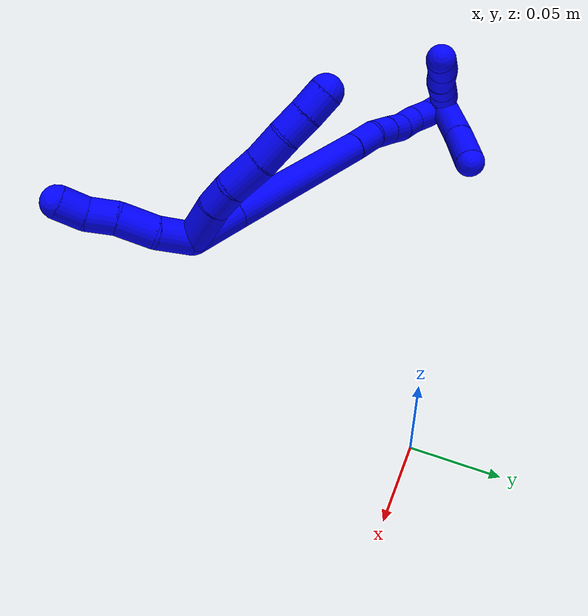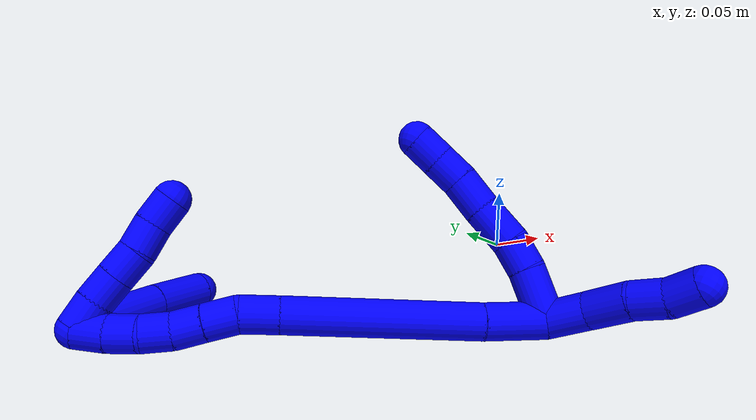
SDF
<sdf version="1.7">
 <world name="default">
  <model name="1">
   <static>0</static>
   <link name="1">
    <collision name="collision-cylinder-e_1_2_8">
     <pose>-0.00369 0.013308 -0.010837 -2.25419 -0.211809 0.440057</pose>
     <geometry><cylinder><radius>0.0125</radius><length>0.035109</length></cylinder></geometry>
     <surface>
      <friction><ode><mu>1.16</mu><mu2>1.16</mu2><slip1>0</slip1><slip2>0</slip2></ode></friction>
      <contact><ode><kp>1e+06</kp><kd>1</kd><max_vel>0</max_vel><min_depth>0.001</min_depth></ode></contact>
     </surface>
    </collision>
    <visual name="visual-cylinder-e_1_2_8">
     <pose>-0.00369 0.013308 -0.010837 -2.25419 -0.211809 0.440057</pose>
     <geometry><cylinder><radius>0.0125</radius><length>0.035109</length></cylinder></geometry>
     <material><ambient>0 0 1 1</ambient></material>
    </visual>
    <collision name="collision-cylinder-e_2_8_9">
     <pose>-0.010771 0.034968 -0.027035 -2.14153 -0.329173 0.590249</pose>
     <geometry><cylinder><radius>0.0125</radius><length>0.020975</length></cylinder></geometry>
     <surface>
      <friction><ode><mu>1.16</mu><mu2>1.16</mu2><slip1>0</slip1><slip2>0</slip2></ode></friction>
      <contact><ode><kp>1e+06</kp><kd>1</kd><max_vel>0</max_vel><min_depth>0.001</min_depth></ode></contact>
     </surface>
    </collision>
    <visual name="visual-cylinder-e_2_8_9">
     <pose>-0.010771 0.034968 -0.027035 -2.14153 -0.329173 0.590249</pose>
     <geometry><cylinder><radius>0.0125</radius><length>0.020975</length></cylinder></geometry>
     <material><ambient>0 0 1 1</ambient></material>
    </visual>
    <collision name="collision-cylinder-e_3_9_10">
     <pose>-0.019874 0.055697 -0.037319 -1.94926 -0.405152 0.587874</pose>
     <geometry><cylinder><radius>0.0125</radius><length>0.028986</length></cylinder></geometry>
     <surface>
      <friction><ode><mu>1.16</mu><mu2>1.16</mu2><slip1>0</slip1><slip2>0</slip2></ode></friction>
      <contact><ode><kp>1e+06</kp><kd>1</kd><max_vel>0</max_vel><min_depth>0.001</min_depth></ode></contact>
     </surface>
    </collision>
    <visual name="visual-cylinder-e_3_9_10">
     <pose>-0.019874 0.055697 -0.037319 -1.94926 -0.405152 0.587874</pose>
     <geometry><cylinder><radius>0.0125</radius><length>0.028986</length></cylinder></geometry>
     <material><ambient>0 0 1 1</ambient></material>
    </visual>
    <collision name="collision-cylinder-e_4_10_11">
     <pose>-0.029248 0.079048 -0.046589 -1.94814 -0.300772 0.438922</pose>
     <geometry><cylinder><radius>0.0125</radius><length>0.024719</length></cylinder></geometry>
     <surface>
      <friction><ode><mu>1.16</mu><mu2>1.16</mu2><slip1>0</slip1><slip2>0</slip2></ode></friction>
      <contact><ode><kp>1e+06</kp><kd>1</kd><max_vel>0</max_vel><min_depth>0.001</min_depth></ode></contact>
     </surface>
    </collision>
    <visual name="visual-cylinder-e_4_10_11">
     <pose>-0.029248 0.079048 -0.046589 -1.94814 -0.300772 0.438922</pose>
     <geometry><cylinder><radius>0.0125</radius><length>0.024719</length></cylinder></geometry>
     <material><ambient>0 0 1 1</ambient></material>
    </visual>
    <collision name="collision-cylinder-e_5_11_12">
     <pose>-0.035914 0.099392 -0.052964 -1.78369 -0.30371 0.374846</pose>
     <geometry><cylinder><radius>0.0125</radius><length>0.020093</length></cylinder></geometry>
     <surface>
      <friction><ode><mu>1.16</mu><mu2>1.16</mu2><slip1>0</slip1><slip2>0</slip2></ode></friction>
      <contact><ode><kp>1e+06</kp><kd>1</kd><max_vel>0</max_vel><min_depth>0.001</min_depth></ode></contact>
     </surface>
    </collision>
    <visual name="visual-cylinder-e_5_11_12">
     <pose>-0.035914 0.099392 -0.052964 -1.78369 -0.30371 0.374846</pose>
     <geometry><cylinder><radius>0.0125</radius><length>0.020093</length></cylinder></geometry>
     <material><ambient>0 0 1 1</ambient></material>
    </visual>
    <collision name="collision-cylinder-e_6_12_6">
     <pose>-0.041381 0.118352 -0.056765 -1.75386 -0.247348 0.296675</pose>
     <geometry><cylinder><radius>0.0125</radius><length>0.020118</length></cylinder></geometry>
     <surface>
      <friction><ode><mu>1.16</mu><mu2>1.16</mu2><slip1>0</slip1><slip2>0</slip2></ode></friction>
      <contact><ode><kp>1e+06</kp><kd>1</kd><max_vel>0</max_vel><min_depth>0.001</min_depth></ode></contact>
     </surface>
    </collision>
    <visual name="visual-cylinder-e_6_12_6">
     <pose>-0.041381 0.118352 -0.056765 -1.75386 -0.247348 0.296675</pose>
     <geometry><cylinder><radius>0.0125</radius><length>0.020118</length></cylinder></geometry>
     <material><ambient>0 0 1 1</ambient></material>
    </visual>
    <collision name="collision-cylinder-e_1_2_13">
     <pose>0.010882 -0.004922 -0.007622 2.56821 0.875781 2.01769</pose>
     <geometry><cylinder><radius>0.0125</radius><length>0.028337</length></cylinder></geometry>
     <surface>
      <friction><ode><mu>1.16</mu><mu2>1.16</mu2><slip1>0</slip1><slip2>0</slip2></ode></friction>
      <contact><ode><kp>1e+06</kp><kd>1</kd><max_vel>0</max_vel><min_depth>0.001</min_depth></ode></contact>
     </surface>
    </collision>
    <visual name="visual-cylinder-e_1_2_13">
     <pose>0.010882 -0.004922 -0.007622 2.56821 0.875781 2.01769</pose>
     <geometry><cylinder><radius>0.0125</radius><length>0.028337</length></cylinder></geometry>
     <material><ambient>0 0 1 1</ambient></material>
    </visual>
    <collision name="collision-cylinder-e_2_13_14">
     <pose>0.034807 -0.012367 -0.021219 2.74211 1.10939 2.50998</pose>
     <geometry><cylinder><radius>0.0125</radius><length>0.029132</length></cylinder></geometry>
     <surface>
      <friction><ode><mu>1.16</mu><mu2>1.16</mu2><slip1>0</slip1><slip2>0</slip2></ode></friction>
      <contact><ode><kp>1e+06</kp><kd>1</kd><max_vel>0</max_vel><min_depth>0.001</min_depth></ode></contact>
     </surface>
    </collision>
    <visual name="visual-cylinder-e_2_13_14">
     <pose>0.034807 -0.012367 -0.021219 2.74211 1.10939 2.50998</pose>
     <geometry><cylinder><radius>0.0125</radius><length>0.029132</length></cylinder></geometry>
     <material><ambient>0 0 1 1</ambient></material>
    </visual>
    <collision name="collision-cylinder-e_3_14_15">
     <pose>0.057076 -0.019019 -0.031169 2.33713 1.01484 1.83529</pose>
     <geometry><cylinder><radius>0.0125</radius><length>0.021726</length></cylinder></geometry>
     <surface>
      <friction><ode><mu>1.16</mu><mu2>1.16</mu2><slip1>0</slip1><slip2>0</slip2></ode></friction>
      <contact><ode><kp>1e+06</kp><kd>1</kd><max_vel>0</max_vel><min_depth>0.001</min_depth></ode></contact>
     </surface>
    </collision>
    <visual name="visual-cylinder-e_3_14_15">
     <pose>0.057076 -0.019019 -0.031169 2.33713 1.01484 1.83529</pose>
     <geometry><cylinder><radius>0.0125</radius><length>0.021726</length></cylinder></geometry>
     <material><ambient>0 0 1 1</ambient></material>
    </visual>
    <collision name="collision-cylinder-e_4_15_5">
     <pose>0.075165 -0.024466 -0.040431 2.89752 1.01958 2.70969</pose>
     <geometry><cylinder><radius>0.0125</radius><length>0.020805</length></cylinder></geometry>
     <surface>
      <friction><ode><mu>1.16</mu><mu2>1.16</mu2><slip1>0</slip1><slip2>0</slip2></ode></friction>
      <contact><ode><kp>1e+06</kp><kd>1</kd><max_vel>0</max_vel><min_depth>0.001</min_depth></ode></contact>
     </surface>
    </collision>
    <visual name="visual-cylinder-e_4_15_5">
     <pose>0.075165 -0.024466 -0.040431 2.89752 1.01958 2.70969</pose>
     <geometry><cylinder><radius>0.0125</radius><length>0.020805</length></cylinder></geometry>
     <material><ambient>0 0 1 1</ambient></material>
    </visual>
    <collision name="collision-cylinder-e_1_2_16">
     <pose>-0.006148 0.016331 0.011807 -0.944801 -0.29609 0.15212</pose>
     <geometry><cylinder><radius>0.0125</radius><length>0.042138</length></cylinder></geometry>
     <surface>
      <friction><ode><mu>1.16</mu><mu2>1.16</mu2><slip1>0</slip1><slip2>0</slip2></ode></friction>
      <contact><ode><kp>1e+06</kp><kd>1</kd><max_vel>0</max_vel><min_depth>0.001</min_depth></ode></contact>
     </surface>
    </collision>
    <visual name="visual-cylinder-e_1_2_16">
     <pose>-0.006148 0.016331 0.011807 -0.944801 -0.29609 0.15212</pose>
     <geometry><cylinder><radius>0.0125</radius><length>0.042138</length></cylinder></geometry>
     <material><ambient>0 0 1 1</ambient></material>
    </visual>
    <collision name="collision-cylinder-e_2_16_17">
     <pose>-0.033328 0.084496 0.05674 -1.00215 -0.329452 0.181591</pose>
     <geometry><cylinder><radius>0.0125</radius><length>0.130023</length></cylinder></geometry>
     <surface>
      <friction><ode><mu>1.16</mu><mu2>1.16</mu2><slip1>0</slip1><slip2>0</slip2></ode></friction>
      <contact><ode><kp>1e+06</kp><kd>1</kd><max_vel>0</max_vel><min_depth>0.001</min_depth></ode></contact>
     </surface>
    </collision>
    <visual name="visual-cylinder-e_2_16_17">
     <pose>-0.033328 0.084496 0.05674 -1.00215 -0.329452 0.181591</pose>
     <geometry><cylinder><radius>0.0125</radius><length>0.130023</length></cylinder></geometry>
     <material><ambient>0 0 1 1</ambient></material>
    </visual>
    <collision name="collision-cylinder-e_3_17_18">
     <pose>-0.057987 0.146732 0.096652 -0.992626 -0.284073 0.154567</pose>
     <geometry><cylinder><radius>0.0125</radius><length>0.025876</length></cylinder></geometry>
     <surface>
      <friction><ode><mu>1.16</mu><mu2>1.16</mu2><slip1>0</slip1><slip2>0</slip2></ode></friction>
      <contact><ode><kp>1e+06</kp><kd>1</kd><max_vel>0</max_vel><min_depth>0.001</min_depth></ode></contact>
     </surface>
    </collision>
    <visual name="visual-cylinder-e_3_17_18">
     <pose>-0.057987 0.146732 0.096652 -0.992626 -0.284073 0.154567</pose>
     <geometry><cylinder><radius>0.0125</radius><length>0.025876</length></cylinder></geometry>
     <material><ambient>0 0 1 1</ambient></material>
    </visual>
    <collision name="collision-cylinder-e_4_18_19">
     <pose>-0.065047 0.163853 0.111308 -0.70681 -0.320427 0.119084</pose>
     <geometry><cylinder><radius>0.0125</radius><length>0.021806</length></cylinder></geometry>
     <surface>
      <friction><ode><mu>1.16</mu><mu2>1.16</mu2><slip1>0</slip1><slip2>0</slip2></ode></friction>
      <contact><ode><kp>1e+06</kp><kd>1</kd><max_vel>0</max_vel><min_depth>0.001</min_depth></ode></contact>
     </surface>
    </collision>
    <visual name="visual-cylinder-e_4_18_19">
     <pose>-0.065047 0.163853 0.111308 -0.70681 -0.320427 0.119084</pose>
     <geometry><cylinder><radius>0.0125</radius><length>0.021806</length></cylinder></geometry>
     <material><ambient>0 0 1 1</ambient></material>
    </visual>
    <collision name="collision-cylinder-e_5_19_20">
     <pose>-0.071968 0.176566 0.126437 -0.690077 -0.35475 0.128679</pose>
     <geometry><cylinder><radius>0.0125</radius><length>0.020077</length></cylinder></geometry>
     <surface>
      <friction><ode><mu>1.16</mu><mu2>1.16</mu2><slip1>0</slip1><slip2>0</slip2></ode></friction>
      <contact><ode><kp>1e+06</kp><kd>1</kd><max_vel>0</max_vel><min_depth>0.001</min_depth></ode></contact>
     </surface>
    </collision>
    <visual name="visual-cylinder-e_5_19_20">
     <pose>-0.071968 0.176566 0.126437 -0.690077 -0.35475 0.128679</pose>
     <geometry><cylinder><radius>0.0125</radius><length>0.020077</length></cylinder></geometry>
     <material><ambient>0 0 1 1</ambient></material>
    </visual>
    <collision name="collision-cylinder-e_6_20_21">
     <pose>-0.077834 0.190109 0.139853 -0.886835 -0.239478 0.114165</pose>
     <geometry><cylinder><radius>0.0125</radius><length>0.020057</length></cylinder></geometry>
     <surface>
      <friction><ode><mu>1.16</mu><mu2>1.16</mu2><slip1>0</slip1><slip2>0</slip2></ode></friction>
      <contact><ode><kp>1e+06</kp><kd>1</kd><max_vel>0</max_vel><min_depth>0.001</min_depth></ode></contact>
     </surface>
    </collision>
    <visual name="visual-cylinder-e_6_20_21">
     <pose>-0.077834 0.190109 0.139853 -0.886835 -0.239478 0.114165</pose>
     <geometry><cylinder><radius>0.0125</radius><length>0.020057</length></cylinder></geometry>
     <material><ambient>0 0 1 1</ambient></material>
    </visual>
    <collision name="collision-cylinder-e_7_21_22">
     <pose>-0.08445 0.205154 0.15111 -0.973119 -0.43727 0.233989</pose>
     <geometry><cylinder><radius>0.0125</radius><length>0.020014</length></cylinder></geometry>
     <surface>
      <friction><ode><mu>1.16</mu><mu2>1.16</mu2><slip1>0</slip1><slip2>0</slip2></ode></friction>
      <contact><ode><kp>1e+06</kp><kd>1</kd><max_vel>0</max_vel><min_depth>0.001</min_depth></ode></contact>
     </surface>
    </collision>
    <visual name="visual-cylinder-e_7_21_22">
     <pose>-0.08445 0.205154 0.15111 -0.973119 -0.43727 0.233989</pose>
     <geometry><cylinder><radius>0.0125</radius><length>0.020014</length></cylinder></geometry>
     <material><ambient>0 0 1 1</ambient></material>
    </visual>
    <collision name="collision-cylinder-e_8_22_1">
     <pose>-0.092256 0.221016 0.160375 -1.1091 -0.364675 0.227424</pose>
     <geometry><cylinder><radius>0.0125</radius><length>0.020009</length></cylinder></geometry>
     <surface>
      <friction><ode><mu>1.16</mu><mu2>1.16</mu2><slip1>0</slip1><slip2>0</slip2></ode></friction>
      <contact><ode><kp>1e+06</kp><kd>1</kd><max_vel>0</max_vel><min_depth>0.001</min_depth></ode></contact>
     </surface>
    </collision>
    <visual name="visual-cylinder-e_8_22_1">
     <pose>-0.092256 0.221016 0.160375 -1.1091 -0.364675 0.227424</pose>
     <geometry><cylinder><radius>0.0125</radius><length>0.020009</length></cylinder></geometry>
     <material><ambient>0 0 1 1</ambient></material>
    </visual>
    <collision name="collision-cylinder-e_1_1_23">
     <pose>-0.111172 0.212944 0.144096 2.46431 -0.529358 -1.31178</pose>
     <geometry><cylinder><radius>0.0125</radius><length>0.060786</length></cylinder></geometry>
     <surface>
      <friction><ode><mu>1.16</mu><mu2>1.16</mu2><slip1>0</slip1><slip2>0</slip2></ode></friction>
      <contact><ode><kp>1e+06</kp><kd>1</kd><max_vel>0</max_vel><min_depth>0.001</min_depth></ode></contact>
     </surface>
    </collision>
    <visual name="visual-cylinder-e_1_1_23">
     <pose>-0.111172 0.212944 0.144096 2.46431 -0.529358 -1.31178</pose>
     <geometry><cylinder><radius>0.0125</radius><length>0.060786</length></cylinder></geometry>
     <material><ambient>0 0 1 1</ambient></material>
    </visual>
    <collision name="collision-cylinder-e_2_23_4">
     <pose>-0.136223 0.185196 0.110909 2.41579 -0.517723 -1.21791</pose>
     <geometry><cylinder><radius>0.0125</radius><length>0.039214</length></cylinder></geometry>
     <surface>
      <friction><ode><mu>1.16</mu><mu2>1.16</mu2><slip1>0</slip1><slip2>0</slip2></ode></friction>
      <contact><ode><kp>1e+06</kp><kd>1</kd><max_vel>0</max_vel><min_depth>0.001</min_depth></ode></contact>
     </surface>
    </collision>
    <visual name="visual-cylinder-e_2_23_4">
     <pose>-0.136223 0.185196 0.110909 2.41579 -0.517723 -1.21791</pose>
     <geometry><cylinder><radius>0.0125</radius><length>0.039214</length></cylinder></geometry>
     <material><ambient>0 0 1 1</ambient></material>
    </visual>
    <collision name="collision-cylinder-e_1_1_24">
     <pose>-0.095438 0.229805 0.154555 -3.09943 0.038567 -1.4818</pose>
     <geometry><cylinder><radius>0.0125</radius><length>0.02</length></cylinder></geometry>
     <surface>
      <friction><ode><mu>1.16</mu><mu2>1.16</mu2><slip1>0</slip1><slip2>0</slip2></ode></friction>
      <contact><ode><kp>1e+06</kp><kd>1</kd><max_vel>0</max_vel><min_depth>0.001</min_depth></ode></contact>
     </surface>
    </collision>
    <visual name="visual-cylinder-e_1_1_24">
     <pose>-0.095438 0.229805 0.154555 -3.09943 0.038567 -1.4818</pose>
     <geometry><cylinder><radius>0.0125</radius><length>0.02</length></cylinder></geometry>
     <material><ambient>0 0 1 1</ambient></material>
    </visual>
    <collision name="collision-cylinder-e_2_24_25">
     <pose>-0.093696 0.229815 0.134672 3.10004 0.136105 2.54968</pose>
     <geometry><cylinder><radius>0.0125</radius><length>0.02</length></cylinder></geometry>
     <surface>
      <friction><ode><mu>1.16</mu><mu2>1.16</mu2><slip1>0</slip1><slip2>0</slip2></ode></friction>
      <contact><ode><kp>1e+06</kp><kd>1</kd><max_vel>0</max_vel><min_depth>0.001</min_depth></ode></contact>
     </surface>
    </collision>
    <visual name="visual-cylinder-e_2_24_25">
     <pose>-0.093696 0.229815 0.134672 3.10004 0.136105 2.54968</pose>
     <geometry><cylinder><radius>0.0125</radius><length>0.02</length></cylinder></geometry>
     <material><ambient>0 0 1 1</ambient></material>
    </visual>
    <collision name="collision-cylinder-e_3_25_26">
     <pose>-0.090937 0.228856 0.114887 3.08629 0.140656 2.39329</pose>
     <geometry><cylinder><radius>0.0125</radius><length>0.02</length></cylinder></geometry>
     <surface>
      <friction><ode><mu>1.16</mu><mu2>1.16</mu2><slip1>0</slip1><slip2>0</slip2></ode></friction>
      <contact><ode><kp>1e+06</kp><kd>1</kd><max_vel>0</max_vel><min_depth>0.001</min_depth></ode></contact>
     </surface>
    </collision>
    <visual name="visual-cylinder-e_3_25_26">
     <pose>-0.090937 0.228856 0.114887 3.08629 0.140656 2.39329</pose>
     <geometry><cylinder><radius>0.0125</radius><length>0.02</length></cylinder></geometry>
     <material><ambient>0 0 1 1</ambient></material>
    </visual>
    <collision name="collision-cylinder-e_4_26_27">
     <pose>-0.089106 0.229443 0.095075 -3.02777 0.042923 -0.72061</pose>
     <geometry><cylinder><radius>0.0125</radius><length>0.02</length></cylinder></geometry>
     <surface>
      <friction><ode><mu>1.16</mu><mu2>1.16</mu2><slip1>0</slip1><slip2>0</slip2></ode></friction>
      <contact><ode><kp>1e+06</kp><kd>1</kd><max_vel>0</max_vel><min_depth>0.001</min_depth></ode></contact>
     </surface>
    </collision>
    <visual name="visual-cylinder-e_4_26_27">
     <pose>-0.089106 0.229443 0.095075 -3.02777 0.042923 -0.72061</pose>
     <geometry><cylinder><radius>0.0125</radius><length>0.02</length></cylinder></geometry>
     <material><ambient>0 0 1 1</ambient></material>
    </visual>
    <collision name="collision-cylinder-e_5_27_3">
     <pose>-0.086919 0.230596 0.075304 -3.13972 0.176754 -3.12051</pose>
     <geometry><cylinder><radius>0.0125</radius><length>0.02</length></cylinder></geometry>
     <surface>
      <friction><ode><mu>1.16</mu><mu2>1.16</mu2><slip1>0</slip1><slip2>0</slip2></ode></friction>
      <contact><ode><kp>1e+06</kp><kd>1</kd><max_vel>0</max_vel><min_depth>0.001</min_depth></ode></contact>
     </surface>
    </collision>
    <visual name="visual-cylinder-e_5_27_3">
     <pose>-0.086919 0.230596 0.075304 -3.13972 0.176754 -3.12051</pose>
     <geometry><cylinder><radius>0.0125</radius><length>0.02</length></cylinder></geometry>
     <material><ambient>0 0 1 1</ambient></material>
    </visual>
    <collision name="collision-sphere-3">
     <pose>-0.08516 0.230615 0.06546 0 -0 0</pose>
     <geometry><sphere><radius>0.0125</radius></sphere></geometry>
     <surface>
      <friction><ode><mu>1.16</mu><mu2>1.16</mu2><slip1>0</slip1><slip2>0</slip2></ode></friction>
      <contact><ode><kp>1e+06</kp><kd>1</kd><max_vel>0</max_vel><min_depth>0.001</min_depth></ode></contact>
     </surface>
    </collision>
    <visual name="visual-sphere-3">
     <pose>-0.08516 0.230615 0.06546 0 -0 0</pose>
     <geometry><sphere><radius>0.0125</radius></sphere></geometry>
     <material><ambient>0 0 1 1</ambient></material>
    </visual>
    <collision name="collision-sphere-27">
     <pose>-0.088677 0.230578 0.085149 0 -0 0</pose>
     <geometry><sphere><radius>0.0125</radius></sphere></geometry>
     <surface>
      <friction><ode><mu>1.16</mu><mu2>1.16</mu2><slip1>0</slip1><slip2>0</slip2></ode></friction>
      <contact><ode><kp>1e+06</kp><kd>1</kd><max_vel>0</max_vel><min_depth>0.001</min_depth></ode></contact>
     </surface>
    </collision>
    <visual name="visual-sphere-27">
     <pose>-0.088677 0.230578 0.085149 0 -0 0</pose>
     <geometry><sphere><radius>0.0125</radius></sphere></geometry>
     <material><ambient>0 0 1 1</ambient></material>
    </visual>
    <collision name="collision-sphere-26">
     <pose>-0.089535 0.228308 0.105001 0 -0 0</pose>
     <geometry><sphere><radius>0.0125</radius></sphere></geometry>
     <surface>
      <friction><ode><mu>1.16</mu><mu2>1.16</mu2><slip1>0</slip1><slip2>0</slip2></ode></friction>
      <contact><ode><kp>1e+06</kp><kd>1</kd><max_vel>0</max_vel><min_depth>0.001</min_depth></ode></contact>
     </surface>
    </collision>
    <visual name="visual-sphere-26">
     <pose>-0.089535 0.228308 0.105001 0 -0 0</pose>
     <geometry><sphere><radius>0.0125</radius></sphere></geometry>
     <material><ambient>0 0 1 1</ambient></material>
    </visual>
    <collision name="collision-sphere-25">
     <pose>-0.092339 0.229403 0.124773 0 -0 0</pose>
     <geometry><sphere><radius>0.0125</radius></sphere></geometry>
     <surface>
      <friction><ode><mu>1.16</mu><mu2>1.16</mu2><slip1>0</slip1><slip2>0</slip2></ode></friction>
      <contact><ode><kp>1e+06</kp><kd>1</kd><max_vel>0</max_vel><min_depth>0.001</min_depth></ode></contact>
     </surface>
    </collision>
    <visual name="visual-sphere-25">
     <pose>-0.092339 0.229403 0.124773 0 -0 0</pose>
     <geometry><sphere><radius>0.0125</radius></sphere></geometry>
     <material><ambient>0 0 1 1</ambient></material>
    </visual>
    <collision name="collision-sphere-24">
     <pose>-0.095053 0.230226 0.144571 0 -0 0</pose>
     <geometry><sphere><radius>0.0125</radius></sphere></geometry>
     <surface>
      <friction><ode><mu>1.16</mu><mu2>1.16</mu2><slip1>0</slip1><slip2>0</slip2></ode></friction>
      <contact><ode><kp>1e+06</kp><kd>1</kd><max_vel>0</max_vel><min_depth>0.001</min_depth></ode></contact>
     </surface>
    </collision>
    <visual name="visual-sphere-24">
     <pose>-0.095053 0.230226 0.144571 0 -0 0</pose>
     <geometry><sphere><radius>0.0125</radius></sphere></geometry>
     <material><ambient>0 0 1 1</ambient></material>
    </visual>
    <collision name="collision-sphere-4">
     <pose>-0.145927 0.173888 0.098166 0 -0 0</pose>
     <geometry><sphere><radius>0.0125</radius></sphere></geometry>
     <surface>
      <friction><ode><mu>1.16</mu><mu2>1.16</mu2><slip1>0</slip1><slip2>0</slip2></ode></friction>
      <contact><ode><kp>1e+06</kp><kd>1</kd><max_vel>0</max_vel><min_depth>0.001</min_depth></ode></contact>
     </surface>
    </collision>
    <visual name="visual-sphere-4">
     <pose>-0.145927 0.173888 0.098166 0 -0 0</pose>
     <geometry><sphere><radius>0.0125</radius></sphere></geometry>
     <material><ambient>0 0 1 1</ambient></material>
    </visual>
    <collision name="collision-sphere-23">
     <pose>-0.126519 0.196505 0.123653 0 -0 0</pose>
     <geometry><sphere><radius>0.0125</radius></sphere></geometry>
     <surface>
      <friction><ode><mu>1.16</mu><mu2>1.16</mu2><slip1>0</slip1><slip2>0</slip2></ode></friction>
      <contact><ode><kp>1e+06</kp><kd>1</kd><max_vel>0</max_vel><min_depth>0.001</min_depth></ode></contact>
     </surface>
    </collision>
    <visual name="visual-sphere-23">
     <pose>-0.126519 0.196505 0.123653 0 -0 0</pose>
     <geometry><sphere><radius>0.0125</radius></sphere></geometry>
     <material><ambient>0 0 1 1</ambient></material>
    </visual>
    <collision name="collision-sphere-1">
     <pose>-0.095824 0.229384 0.164538 0 -0 0</pose>
     <geometry><sphere><radius>0.0125</radius></sphere></geometry>
     <surface>
      <friction><ode><mu>1.16</mu><mu2>1.16</mu2><slip1>0</slip1><slip2>0</slip2></ode></friction>
      <contact><ode><kp>1e+06</kp><kd>1</kd><max_vel>0</max_vel><min_depth>0.001</min_depth></ode></contact>
     </surface>
    </collision>
    <visual name="visual-sphere-1">
     <pose>-0.095824 0.229384 0.164538 0 -0 0</pose>
     <geometry><sphere><radius>0.0125</radius></sphere></geometry>
     <material><ambient>0 0 1 1</ambient></material>
    </visual>
    <collision name="collision-sphere-22">
     <pose>-0.088688 0.212648 0.156211 0 -0 0</pose>
     <geometry><sphere><radius>0.0125</radius></sphere></geometry>
     <surface>
      <friction><ode><mu>1.16</mu><mu2>1.16</mu2><slip1>0</slip1><slip2>0</slip2></ode></friction>
      <contact><ode><kp>1e+06</kp><kd>1</kd><max_vel>0</max_vel><min_depth>0.001</min_depth></ode></contact>
     </surface>
    </collision>
    <visual name="visual-sphere-22">
     <pose>-0.088688 0.212648 0.156211 0 -0 0</pose>
     <geometry><sphere><radius>0.0125</radius></sphere></geometry>
     <material><ambient>0 0 1 1</ambient></material>
    </visual>
    <collision name="collision-sphere-21">
     <pose>-0.080213 0.19766 0.146008 0 -0 0</pose>
     <geometry><sphere><radius>0.0125</radius></sphere></geometry>
     <surface>
      <friction><ode><mu>1.16</mu><mu2>1.16</mu2><slip1>0</slip1><slip2>0</slip2></ode></friction>
      <contact><ode><kp>1e+06</kp><kd>1</kd><max_vel>0</max_vel><min_depth>0.001</min_depth></ode></contact>
     </surface>
    </collision>
    <visual name="visual-sphere-21">
     <pose>-0.080213 0.19766 0.146008 0 -0 0</pose>
     <geometry><sphere><radius>0.0125</radius></sphere></geometry>
     <material><ambient>0 0 1 1</ambient></material>
    </visual>
    <collision name="collision-sphere-12">
     <pose>-0.038919 0.108762 -0.05499 0 -0 0</pose>
     <geometry><sphere><radius>0.0125</radius></sphere></geometry>
     <surface>
      <friction><ode><mu>1.16</mu><mu2>1.16</mu2><slip1>0</slip1><slip2>0</slip2></ode></friction>
      <contact><ode><kp>1e+06</kp><kd>1</kd><max_vel>0</max_vel><min_depth>0.001</min_depth></ode></contact>
     </surface>
    </collision>
    <visual name="visual-sphere-12">
     <pose>-0.038919 0.108762 -0.05499 0 -0 0</pose>
     <geometry><sphere><radius>0.0125</radius></sphere></geometry>
     <material><ambient>0 0 1 1</ambient></material>
    </visual>
    <collision name="collision-sphere-11">
     <pose>-0.03291 0.090022 -0.050939 0 -0 0</pose>
     <geometry><sphere><radius>0.0125</radius></sphere></geometry>
     <surface>
      <friction><ode><mu>1.16</mu><mu2>1.16</mu2><slip1>0</slip1><slip2>0</slip2></ode></friction>
      <contact><ode><kp>1e+06</kp><kd>1</kd><max_vel>0</max_vel><min_depth>0.001</min_depth></ode></contact>
     </surface>
    </collision>
    <visual name="visual-sphere-11">
     <pose>-0.03291 0.090022 -0.050939 0 -0 0</pose>
     <geometry><sphere><radius>0.0125</radius></sphere></geometry>
     <material><ambient>0 0 1 1</ambient></material>
    </visual>
    <collision name="collision-sphere-10">
     <pose>-0.025586 0.068074 -0.04224 0 -0 0</pose>
     <geometry><sphere><radius>0.0125</radius></sphere></geometry>
     <surface>
      <friction><ode><mu>1.16</mu><mu2>1.16</mu2><slip1>0</slip1><slip2>0</slip2></ode></friction>
      <contact><ode><kp>1e+06</kp><kd>1</kd><max_vel>0</max_vel><min_depth>0.001</min_depth></ode></contact>
     </surface>
    </collision>
    <visual name="visual-sphere-10">
     <pose>-0.025586 0.068074 -0.04224 0 -0 0</pose>
     <geometry><sphere><radius>0.0125</radius></sphere></geometry>
     <material><ambient>0 0 1 1</ambient></material>
    </visual>
    <collision name="collision-sphere-9">
     <pose>-0.014161 0.043319 -0.032397 0 -0 0</pose>
     <geometry><sphere><radius>0.0125</radius></sphere></geometry>
     <surface>
      <friction><ode><mu>1.16</mu><mu2>1.16</mu2><slip1>0</slip1><slip2>0</slip2></ode></friction>
      <contact><ode><kp>1e+06</kp><kd>1</kd><max_vel>0</max_vel><min_depth>0.001</min_depth></ode></contact>
     </surface>
    </collision>
    <visual name="visual-sphere-9">
     <pose>-0.014161 0.043319 -0.032397 0 -0 0</pose>
     <geometry><sphere><radius>0.0125</radius></sphere></geometry>
     <material><ambient>0 0 1 1</ambient></material>
    </visual>
    <collision name="collision-sphere-2">
     <geometry><sphere><radius>0.0125</radius></sphere></geometry>
     <surface>
      <friction><ode><mu>1.16</mu><mu2>1.16</mu2><slip1>0</slip1><slip2>0</slip2></ode></friction>
      <contact><ode><kp>1e+06</kp><kd>1</kd><max_vel>0</max_vel><min_depth>0.001</min_depth></ode></contact>
     </surface>
    </collision>
    <visual name="visual-sphere-2">
     <geometry><sphere><radius>0.0125</radius></sphere></geometry>
     <material><ambient>0 0 1 1</ambient></material>
    </visual>
    <collision name="collision-sphere-19">
     <pose>-0.068481 0.170573 0.119178 0 -0 0</pose>
     <geometry><sphere><radius>0.0125</radius></sphere></geometry>
     <surface>
      <friction><ode><mu>1.16</mu><mu2>1.16</mu2><slip1>0</slip1><slip2>0</slip2></ode></friction>
      <contact><ode><kp>1e+06</kp><kd>1</kd><max_vel>0</max_vel><min_depth>0.001</min_depth></ode></contact>
     </surface>
    </collision>
    <visual name="visual-sphere-19">
     <pose>-0.068481 0.170573 0.119178 0 -0 0</pose>
     <geometry><sphere><radius>0.0125</radius></sphere></geometry>
     <material><ambient>0 0 1 1</ambient></material>
    </visual>
    <collision name="collision-sphere-8">
     <pose>-0.007381 0.026616 -0.021673 0 -0 0</pose>
     <geometry><sphere><radius>0.0125</radius></sphere></geometry>
     <surface>
      <friction><ode><mu>1.16</mu><mu2>1.16</mu2><slip1>0</slip1><slip2>0</slip2></ode></friction>
      <contact><ode><kp>1e+06</kp><kd>1</kd><max_vel>0</max_vel><min_depth>0.001</min_depth></ode></contact>
     </surface>
    </collision>
    <visual name="visual-sphere-8">
     <pose>-0.007381 0.026616 -0.021673 0 -0 0</pose>
     <geometry><sphere><radius>0.0125</radius></sphere></geometry>
     <material><ambient>0 0 1 1</ambient></material>
    </visual>
    <collision name="collision-sphere-6">
     <pose>-0.043844 0.127942 -0.058541 0 -0 0</pose>
     <geometry><sphere><radius>0.0125</radius></sphere></geometry>
     <surface>
      <friction><ode><mu>1.16</mu><mu2>1.16</mu2><slip1>0</slip1><slip2>0</slip2></ode></friction>
      <contact><ode><kp>1e+06</kp><kd>1</kd><max_vel>0</max_vel><min_depth>0.001</min_depth></ode></contact>
     </surface>
    </collision>
    <visual name="visual-sphere-6">
     <pose>-0.043844 0.127942 -0.058541 0 -0 0</pose>
     <geometry><sphere><radius>0.0125</radius></sphere></geometry>
     <material><ambient>0 0 1 1</ambient></material>
    </visual>
    <collision name="collision-sphere-13">
     <pose>0.021764 -0.009844 -0.015245 0 -0 0</pose>
     <geometry><sphere><radius>0.0125</radius></sphere></geometry>
     <surface>
      <friction><ode><mu>1.16</mu><mu2>1.16</mu2><slip1>0</slip1><slip2>0</slip2></ode></friction>
      <contact><ode><kp>1e+06</kp><kd>1</kd><max_vel>0</max_vel><min_depth>0.001</min_depth></ode></contact>
     </surface>
    </collision>
    <visual name="visual-sphere-13">
     <pose>0.021764 -0.009844 -0.015245 0 -0 0</pose>
     <geometry><sphere><radius>0.0125</radius></sphere></geometry>
     <material><ambient>0 0 1 1</ambient></material>
    </visual>
    <collision name="collision-sphere-14">
     <pose>0.047849 -0.014889 -0.027193 0 -0 0</pose>
     <geometry><sphere><radius>0.0125</radius></sphere></geometry>
     <surface>
      <friction><ode><mu>1.16</mu><mu2>1.16</mu2><slip1>0</slip1><slip2>0</slip2></ode></friction>
      <contact><ode><kp>1e+06</kp><kd>1</kd><max_vel>0</max_vel><min_depth>0.001</min_depth></ode></contact>
     </surface>
    </collision>
    <visual name="visual-sphere-14">
     <pose>0.047849 -0.014889 -0.027193 0 -0 0</pose>
     <geometry><sphere><radius>0.0125</radius></sphere></geometry>
     <material><ambient>0 0 1 1</ambient></material>
    </visual>
    <collision name="collision-sphere-15">
     <pose>0.066303 -0.02315 -0.035145 0 -0 0</pose>
     <geometry><sphere><radius>0.0125</radius></sphere></geometry>
     <surface>
      <friction><ode><mu>1.16</mu><mu2>1.16</mu2><slip1>0</slip1><slip2>0</slip2></ode></friction>
      <contact><ode><kp>1e+06</kp><kd>1</kd><max_vel>0</max_vel><min_depth>0.001</min_depth></ode></contact>
     </surface>
    </collision>
    <visual name="visual-sphere-15">
     <pose>0.066303 -0.02315 -0.035145 0 -0 0</pose>
     <geometry><sphere><radius>0.0125</radius></sphere></geometry>
     <material><ambient>0 0 1 1</ambient></material>
    </visual>
    <collision name="collision-sphere-5">
     <pose>0.084027 -0.025783 -0.045718 0 -0 0</pose>
     <geometry><sphere><radius>0.0125</radius></sphere></geometry>
     <surface>
      <friction><ode><mu>1.16</mu><mu2>1.16</mu2><slip1>0</slip1><slip2>0</slip2></ode></friction>
      <contact><ode><kp>1e+06</kp><kd>1</kd><max_vel>0</max_vel><min_depth>0.001</min_depth></ode></contact>
     </surface>
    </collision>
    <visual name="visual-sphere-5">
     <pose>0.084027 -0.025783 -0.045718 0 -0 0</pose>
     <geometry><sphere><radius>0.0125</radius></sphere></geometry>
     <material><ambient>0 0 1 1</ambient></material>
    </visual>
    <collision name="collision-sphere-16">
     <pose>-0.012295 0.032662 0.023614 0 -0 0</pose>
     <geometry><sphere><radius>0.0125</radius></sphere></geometry>
     <surface>
      <friction><ode><mu>1.16</mu><mu2>1.16</mu2><slip1>0</slip1><slip2>0</slip2></ode></friction>
      <contact><ode><kp>1e+06</kp><kd>1</kd><max_vel>0</max_vel><min_depth>0.001</min_depth></ode></contact>
     </surface>
    </collision>
    <visual name="visual-sphere-16">
     <pose>-0.012295 0.032662 0.023614 0 -0 0</pose>
     <geometry><sphere><radius>0.0125</radius></sphere></geometry>
     <material><ambient>0 0 1 1</ambient></material>
    </visual>
    <collision name="collision-sphere-17">
     <pose>-0.054361 0.136331 0.089865 0 -0 0</pose>
     <geometry><sphere><radius>0.0125</radius></sphere></geometry>
     <surface>
      <friction><ode><mu>1.16</mu><mu2>1.16</mu2><slip1>0</slip1><slip2>0</slip2></ode></friction>
      <contact><ode><kp>1e+06</kp><kd>1</kd><max_vel>0</max_vel><min_depth>0.001</min_depth></ode></contact>
     </surface>
    </collision>
    <visual name="visual-sphere-17">
     <pose>-0.054361 0.136331 0.089865 0 -0 0</pose>
     <geometry><sphere><radius>0.0125</radius></sphere></geometry>
     <material><ambient>0 0 1 1</ambient></material>
    </visual>
    <collision name="collision-sphere-18">
     <pose>-0.061613 0.157133 0.103439 0 -0 0</pose>
     <geometry><sphere><radius>0.0125</radius></sphere></geometry>
     <surface>
      <friction><ode><mu>1.16</mu><mu2>1.16</mu2><slip1>0</slip1><slip2>0</slip2></ode></friction>
      <contact><ode><kp>1e+06</kp><kd>1</kd><max_vel>0</max_vel><min_depth>0.001</min_depth></ode></contact>
     </surface>
    </collision>
    <visual name="visual-sphere-18">
     <pose>-0.061613 0.157133 0.103439 0 -0 0</pose>
     <geometry><sphere><radius>0.0125</radius></sphere></geometry>
     <material><ambient>0 0 1 1</ambient></material>
    </visual>
    <collision name="collision-sphere-20">
     <pose>-0.075455 0.182558 0.133697 0 -0 0</pose>
     <geometry><sphere><radius>0.0125</radius></sphere></geometry>
     <surface>
      <friction><ode><mu>1.16</mu><mu2>1.16</mu2><slip1>0</slip1><slip2>0</slip2></ode></friction>
      <contact><ode><kp>1e+06</kp><kd>1</kd><max_vel>0</max_vel><min_depth>0.001</min_depth></ode></contact>
     </surface>
    </collision>
    <visual name="visual-sphere-20">
     <pose>-0.075455 0.182558 0.133697 0 -0 0</pose>
     <geometry><sphere><radius>0.0125</radius></sphere></geometry>
     <material><ambient>0 0 1 1</ambient></material>
    </visual>
    <inertial>
     <pose>-0.04581 0.114443 0.054984 0 -0 0</pose>
     <mass>0.75</mass>
     <inertia>
      <ixx>0.00022</ixx>
      <ixy>0</ixy>
      <ixz>0</ixz>
      <iyy>0.000172</iyy>
      <iyz>0</iyz>
      <izz>-9.1e-05</izz>
     </inertia>
    </inertial>
   </link>
   <pose>-0.110899 -0.19788 0.011488 2.40762 -0.288413 -1.63054</pose>
  </model>
 </world>
</sdf>
